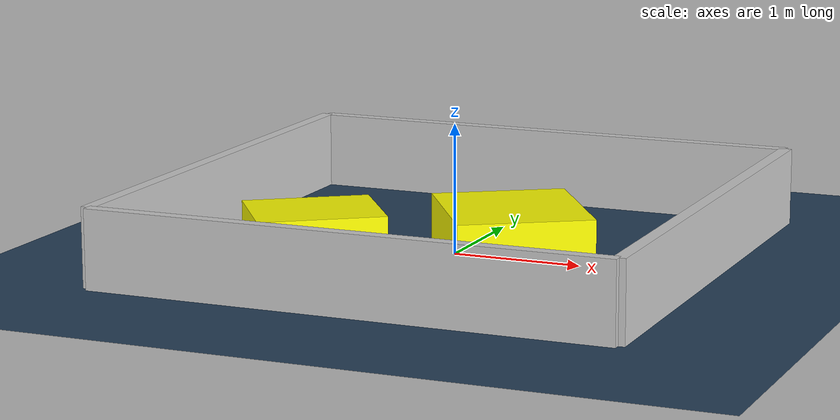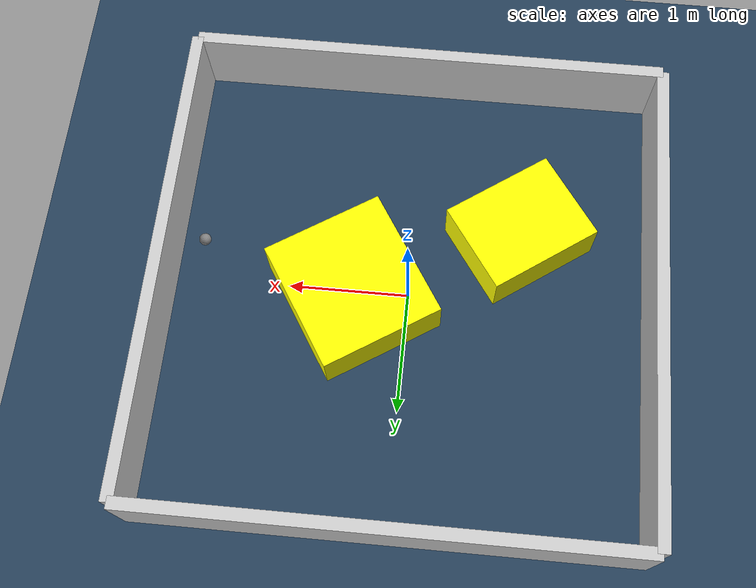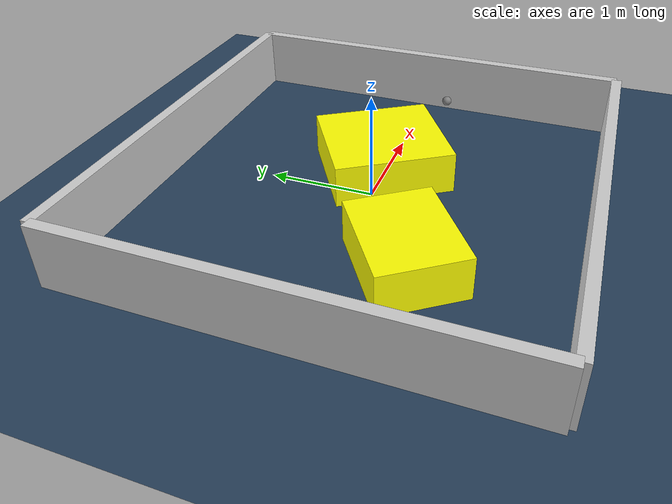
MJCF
<?xml version="1.0" ?>
<mujoco model="generated_environment">
  <option timestep="0.01" integrator="RK4" cone="elliptic"/>
  <default>
    <geom density="1"/>
  </default>
  <asset>
    <texture builtin="gradient" height="3072" rgb1="0.3 0.5 0.7" rgb2="0 0 0" type="skybox" width="512"/>
    <texture builtin="checker" height="300" mark="edge" markrgb="0.8 0.8 0.8" name="groundplane" rgb1="0.2 0.3 0.4" rgb2="0.1 0.2 0.3" type="2d" width="300"/>
    <material name="groundplane" reflectance="0.2" texrepeat="5 5" texture="groundplane" texuniform="true"/>
    <material name="robot" rgba="0.0 1.0 0.0 1"/>
  </asset>
  <worldbody>
    <light dir="0 0 -1" directional="true" pos="0 0 1.5"/>
    <geom condim="4" friction="1.0 0.005 0.001" material="groundplane" name="floor" size="0 0 0.05" type="plane"/>
    <body name="walls">
      <geom name="wall_1" condim="4" pos="-2.0 0.0 0.3" rgba="0.800000011920929 0.800000011920929 0.800000011920929 1.0" size="0.05 2.0 0.3" type="box"/>
      <geom name="wall_2" condim="4" pos="2.0 0.0 0.3" rgba="0.800000011920929 0.800000011920929 0.800000011920929 1.0" size="0.05 2.0 0.3" type="box"/>
      <geom name="wall_3" condim="4" pos="0.0 -2.0 0.3" rgba="0.800000011920929 0.800000011920929 0.800000011920929 1.0" size="2.0 0.05 0.3" type="box"/>
      <geom name="wall_4" condim="4" pos="0.0 2.0 0.3" rgba="0.800000011920929 0.800000011920929 0.800000011920929 1.0" size="2.0 0.05 0.3" type="box"/>
    </body>
    <body name="robot">
      <joint name="joint_x" type="slide" pos="0 0 0" axis="1 0 0"/>
      <joint name="joint_y" type="slide" pos="0 0 0" axis="0 1 0"/>
      <geom name="robot" type="sphere" pos="1.727612874415676 -0.28012786351524155 0.2" size="0.05" mass="5." friction="1.0 0.005 0.0001" condim="4"/>
      <site name="sensor_ball"/>
    </body>
    <body name="obstacle_1_movable">
      <geom name="obstacle_1_movable" condim="4" pos="0.4495321421817471 0.03964602086072455 0.2" euler="0 0 122.50625960269498" friction="1.0 0.005 0.001" rgba="1 1 0 1" size="0.5620477859256875 0.5176535555364239 0.2" type="box" mass="0.1"/>
      <joint type="free"/>
    </body>
    <body name="obstacle_2_movable">
      <geom name="obstacle_2_movable" condim="4" pos="-0.8873841426374806 -0.5951626891691137 0.2" euler="0 0 215.02863777663663" friction="1.0 0.005 0.001" rgba="1 1 0 1" size="0.48621574323225886 0.392016008738478 0.2" type="box" mass="0.1"/>
      <joint type="free"/>
    </body>
  </worldbody>
  <actuator>
    <motor name="actuator_x" joint="joint_x" gear="1" ctrlrange="-1 1"/>
    <motor name="actuator_y" joint="joint_y" gear="1" ctrlrange="-1 1"/>
  </actuator>
</mujoco>
